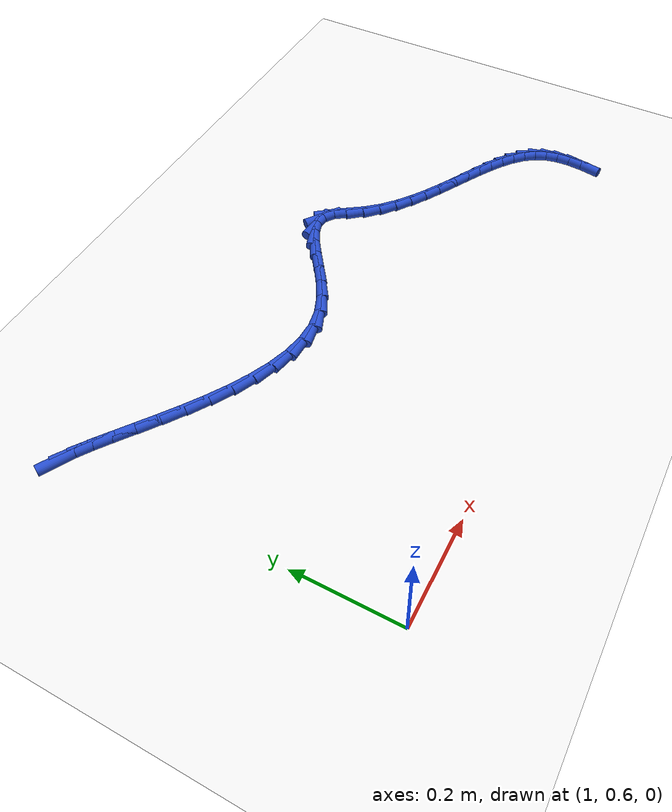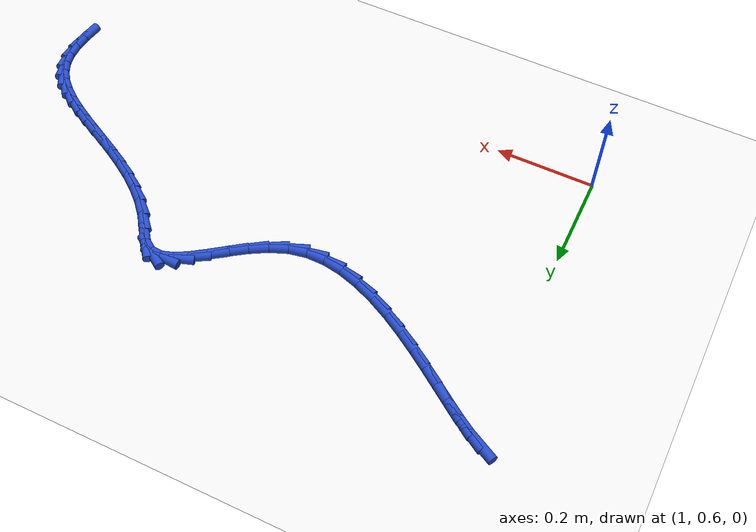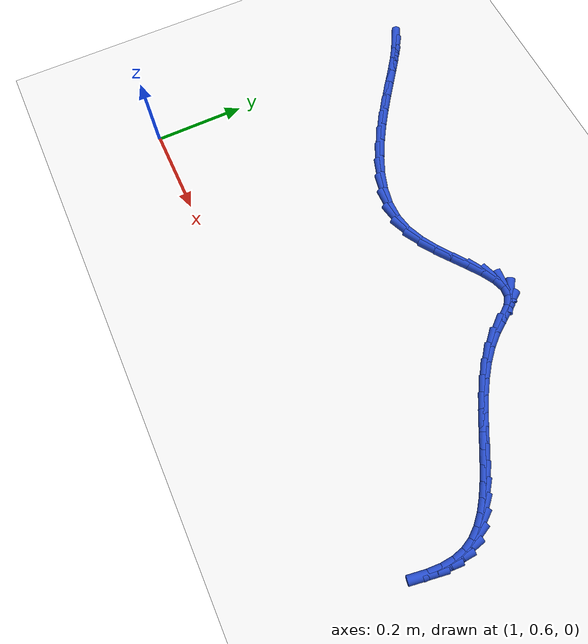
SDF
<sdf version="1.6">
 <world name="default">
  <model name="ground_plane">
   <static>1</static>
   <link name="link">
    <collision name="collision">
     <geometry><plane><normal>0 0 1</normal><size>100 100</size></plane></geometry>
     <surface><friction><ode><mu>100</mu><mu2>50</mu2></ode></friction></surface>
    </collision>
    <visual name="visual">
     <cast_shadows>0</cast_shadows>
     <geometry><plane><normal>0 0 1</normal><size>100 100</size></plane></geometry>
     <material>
      <script><uri>file://media/materials/scripts/gazebo.material</uri><name>Gazebo/WhiteGlow</name></script>
     </material>
    </visual>
   </link>
  </model>
  <model name="line">
   <link name="link_60">
    <pose>0.9881813290093746 1.2246917080598054 0.01 0 1.57 -0.501588560847529</pose>
    <collision name="collision">
     <geometry><cylinder><radius>0.01</radius><length>0.08</length></cylinder></geometry>
    </collision>
    <visual name="visual">
     <material>
      <script><name>Gazebo/Blue</name><uri>file://media/materials/scripts/gazebo.material</uri></script>
     </material>
     <geometry><cylinder><radius>0.01</radius><length>0.08</length></cylinder></geometry>
    </visual>
   </link>
   <link name="link_61">
    <pose>1.0100900992992603 1.2126776626422224 0.01 0 1.57 -0.5816954419464128</pose>
    <collision name="collision">
     <geometry><cylinder><radius>0.01</radius><length>0.08</length></cylinder></geometry>
    </collision>
    <visual name="visual">
     <material>
      <script><name>Gazebo/Blue</name><uri>file://media/materials/scripts/gazebo.material</uri></script>
     </material>
     <geometry><cylinder><radius>0.01</radius><length>0.08</length></cylinder></geometry>
    </visual>
   </link>
   <link name="link_62">
    <pose>1.0353483571992719 1.1960679749845928 0.01 0 1.57 -0.6208011964271664</pose>
    <collision name="collision">
     <geometry><cylinder><radius>0.01</radius><length>0.08</length></cylinder></geometry>
    </collision>
    <visual name="visual">
     <material>
      <script><name>Gazebo/Blue</name><uri>file://media/materials/scripts/gazebo.material</uri></script>
     </material>
     <geometry><cylinder><radius>0.01</radius><length>0.08</length></cylinder></geometry>
    </visual>
   </link>
   <link name="link_63">
    <pose>1.063585264525669 1.1758752193279505 0.01 0 1.57 -0.6357735603474983</pose>
    <collision name="collision">
     <geometry><cylinder><radius>0.01</radius><length>0.08</length></cylinder></geometry>
    </collision>
    <visual name="visual">
     <material>
      <script><name>Gazebo/Blue</name><uri>file://media/materials/scripts/gazebo.material</uri></script>
     </material>
     <geometry><cylinder><radius>0.01</radius><length>0.08</length></cylinder></geometry>
    </visual>
   </link>
   <link name="link_64">
    <pose>1.0944299830947086 1.1531119699133285 0.01 0 1.57 -0.6339519979710913</pose>
    <collision name="collision">
     <geometry><cylinder><radius>0.01</radius><length>0.08</length></cylinder></geometry>
    </collision>
    <visual name="visual">
     <material>
      <script><name>Gazebo/Blue</name><uri>file://media/materials/scripts/gazebo.material</uri></script>
     </material>
     <geometry><cylinder><radius>0.01</radius><length>0.08</length></cylinder></geometry>
    </visual>
   </link>
   <link name="link_65">
    <pose>1.1275116747226495 1.1287908009817615 0.01 0 1.57 -0.6184240336682811</pose>
    <collision name="collision">
     <geometry><cylinder><radius>0.01</radius><length>0.08</length></cylinder></geometry>
    </collision>
    <visual name="visual">
     <material>
      <script><name>Gazebo/Blue</name><uri>file://media/materials/scripts/gazebo.material</uri></script>
     </material>
     <geometry><cylinder><radius>0.01</radius><length>0.08</length></cylinder></geometry>
    </visual>
   </link>
   <link name="link_66">
    <pose>1.1624595012257506 1.1039242867742827 0.01 0 1.57 -0.5899732162965794</pose>
    <collision name="collision">
     <geometry><cylinder><radius>0.01</radius><length>0.08</length></cylinder></geometry>
    </collision>
    <visual name="visual">
     <material>
      <script><name>Gazebo/Blue</name><uri>file://media/materials/scripts/gazebo.material</uri></script>
     </material>
     <geometry><cylinder><radius>0.01</radius><length>0.08</length></cylinder></geometry>
    </visual>
   </link>
   <link name="link_67">
    <pose>1.198902624420269 1.0795250015319262 0.01 0 1.57 -0.5478032008119791</pose>
    <collision name="collision">
     <geometry><cylinder><radius>0.01</radius><length>0.08</length></cylinder></geometry>
    </collision>
    <visual name="visual">
     <material>
      <script><name>Gazebo/Blue</name><uri>file://media/materials/scripts/gazebo.material</uri></script>
     </material>
     <geometry><cylinder><radius>0.01</radius><length>0.08</length></cylinder></geometry>
    </visual>
   </link>
   <link name="link_68">
    <pose>1.236470206122464 1.0566055194957253 0.01 0 1.57 -0.48973646514505537</pose>
    <collision name="collision">
     <geometry><cylinder><radius>0.01</radius><length>0.08</length></cylinder></geometry>
    </collision>
    <visual name="visual">
     <material>
      <script><name>Gazebo/Blue</name><uri>file://media/materials/scripts/gazebo.material</uri></script>
     </material>
     <geometry><cylinder><radius>0.01</radius><length>0.08</length></cylinder></geometry>
    </visual>
   </link>
   <link name="link_69">
    <pose>1.2747914081485934 1.0361784149067137 0.01 0 1.57 -0.4121753347457541</pose>
    <collision name="collision">
     <geometry><cylinder><radius>0.01</radius><length>0.08</length></cylinder></geometry>
    </collision>
    <visual name="visual">
     <material>
      <script><name>Gazebo/Blue</name><uri>file://media/materials/scripts/gazebo.material</uri></script>
     </material>
     <geometry><cylinder><radius>0.01</radius><length>0.08</length></cylinder></geometry>
    </visual>
   </link>
   <link name="link_70">
    <pose>1.3134953923149153 1.0192562620059256 0.01 0 1.57 -0.3100667684347979</pose>
    <collision name="collision">
     <geometry><cylinder><radius>0.01</radius><length>0.08</length></cylinder></geometry>
    </collision>
    <visual name="visual">
     <material>
      <script><name>Gazebo/Blue</name><uri>file://media/materials/scripts/gazebo.material</uri></script>
     </material>
     <geometry><cylinder><radius>0.01</radius><length>0.08</length></cylinder></geometry>
    </visual>
   </link>
   <link name="link_71">
    <pose>1.352211320437688 1.0068516350343941 0.01 0 1.57 -0.17734184065778916</pose>
    <collision name="collision">
     <geometry><cylinder><radius>0.01</radius><length>0.08</length></cylinder></geometry>
    </collision>
    <visual name="visual">
     <material>
      <script><name>Gazebo/Blue</name><uri>file://media/materials/scripts/gazebo.material</uri></script>
     </material>
     <geometry><cylinder><radius>0.01</radius><length>0.08</length></cylinder></geometry>
    </visual>
   </link>
   <link name="link_72">
    <pose>1.3905683543331704 0.9999771082331536 0.01 0 1.57 -0.008819228939796616</pose>
    <collision name="collision">
     <geometry><cylinder><radius>0.01</radius><length>0.08</length></cylinder></geometry>
    </collision>
    <visual name="visual">
     <material>
      <script><name>Gazebo/Blue</name><uri>file://media/materials/scripts/gazebo.material</uri></script>
     </material>
     <geometry><cylinder><radius>0.01</radius><length>0.08</length></cylinder></geometry>
    </visual>
   </link>
   <link name="link_73">
    <pose>1.4281956558176199 0.9996452558432374 0.01 0 1.57 0.19493076184710992</pose>
    <collision name="collision">
     <geometry><cylinder><radius>0.01</radius><length>0.08</length></cylinder></geometry>
    </collision>
    <visual name="visual">
     <material>
      <script><name>Gazebo/Blue</name><uri>file://media/materials/scripts/gazebo.material</uri></script>
     </material>
     <geometry><cylinder><radius>0.01</radius><length>0.08</length></cylinder></geometry>
    </visual>
   </link>
   <link name="link_74">
    <pose>1.464723219996872 1.0068571802349615 0.01 0 1.57 0.39399973062562726</pose>
    <collision name="collision">
     <geometry><cylinder><radius>0.01</radius><length>0.08</length></cylinder></geometry>
    </collision>
    <visual name="visual">
     <material>
      <script><name>Gazebo/Blue</name><uri>file://media/materials/scripts/gazebo.material</uri></script>
     </material>
     <geometry><cylinder><radius>0.01</radius><length>0.08</length></cylinder></geometry>
    </visual>
   </link>
   <link name="link_75">
    <pose>1.4998643778442444 1.0214667015796945 0.01 0 1.57 0.5311616090390087</pose>
    <collision name="collision">
     <geometry><cylinder><radius>0.01</radius><length>0.08</length></cylinder></geometry>
    </collision>
    <visual name="visual">
     <material>
      <script><name>Gazebo/Blue</name><uri>file://media/materials/scripts/gazebo.material</uri></script>
     </material>
     <geometry><cylinder><radius>0.01</radius><length>0.08</length></cylinder></geometry>
    </visual>
   </link>
   <link name="link_76">
    <pose>1.533485664486304 1.0412184834138682 0.01 0 1.57 0.6112109564420343</pose>
    <collision name="collision">
     <geometry><cylinder><radius>0.01</radius><length>0.08</length></cylinder></geometry>
    </collision>
    <visual name="visual">
     <material>
      <script><name>Gazebo/Blue</name><uri>file://media/materials/scripts/gazebo.material</uri></script>
     </material>
     <geometry><cylinder><radius>0.01</radius><length>0.08</length></cylinder></geometry>
    </visual>
   </link>
   <link name="link_77">
    <pose>1.565470067665578 1.0636306866408451 0.01 0 1.57 0.6417608346960191</pose>
    <collision name="collision">
     <geometry><cylinder><radius>0.01</radius><length>0.08</length></cylinder></geometry>
    </collision>
    <visual name="visual">
     <material>
      <script><name>Gazebo/Blue</name><uri>file://media/materials/scripts/gazebo.material</uri></script>
     </material>
     <geometry><cylinder><radius>0.01</radius><length>0.08</length></cylinder></geometry>
    </visual>
   </link>
   <link name="link_78">
    <pose>1.59570057512459 1.0862214721639876 0.01 0 1.57 0.6209652724514145</pose>
    <collision name="collision">
     <geometry><cylinder><radius>0.01</radius><length>0.08</length></cylinder></geometry>
    </collision>
    <visual name="visual">
     <material>
      <script><name>Gazebo/Blue</name><uri>file://media/materials/scripts/gazebo.material</uri></script>
     </material>
     <geometry><cylinder><radius>0.01</radius><length>0.08</length></cylinder></geometry>
    </visual>
   </link>
   <link name="link_79">
    <pose>1.6240601746058658 1.1065090008866583 0.01 0 1.57 0.5314332965738418</pose>
    <collision name="collision">
     <geometry><cylinder><radius>0.01</radius><length>0.08</length></cylinder></geometry>
    </collision>
    <visual name="visual">
     <material>
      <script><name>Gazebo/Blue</name><uri>file://media/materials/scripts/gazebo.material</uri></script>
     </material>
     <geometry><cylinder><radius>0.01</radius><length>0.08</length></cylinder></geometry>
    </visual>
   </link>
   <link name="link_80">
    <pose>1.6504318538519311 1.12201143371222 0.01 0 1.57 0.32717707898909243</pose>
    <collision name="collision">
     <geometry><cylinder><radius>0.01</radius><length>0.08</length></cylinder></geometry>
    </collision>
    <visual name="visual">
     <material>
      <script><name>Gazebo/Blue</name><uri>file://media/materials/scripts/gazebo.material</uri></script>
     </material>
     <geometry><cylinder><radius>0.01</radius><length>0.08</length></cylinder></geometry>
    </visual>
   </link>
   <link name="link_81">
    <pose>1.6746986006053104 1.1302469315440344 0.01 0 1.57 -0.06853797103877704</pose>
    <collision name="collision">
     <geometry><cylinder><radius>0.01</radius><length>0.08</length></cylinder></geometry>
    </collision>
    <visual name="visual">
     <material>
      <script><name>Gazebo/Blue</name><uri>file://media/materials/scripts/gazebo.material</uri></script>
     </material>
     <geometry><cylinder><radius>0.01</radius><length>0.08</length></cylinder></geometry>
    </visual>
   </link>
   <link name="link_82">
    <pose>1.6967434026085295 1.128733655285465 0.01 0 1.57 -0.6069156937477816</pose>
    <collision name="collision">
     <geometry><cylinder><radius>0.01</radius><length>0.08</length></cylinder></geometry>
    </collision>
    <visual name="visual">
     <material>
      <script><name>Gazebo/Blue</name><uri>file://media/materials/scripts/gazebo.material</uri></script>
     </material>
     <geometry><cylinder><radius>0.01</radius><length>0.08</length></cylinder></geometry>
    </visual>
   </link>
   <link name="link_83">
    <pose>1.7164635441013658 1.1150412161861176 0.01 0 1.57 -0.930733746735525</pose>
    <collision name="collision">
     <geometry><cylinder><radius>0.01</radius><length>0.08</length></cylinder></geometry>
    </collision>
    <visual name="visual">
     <material>
      <script><name>Gazebo/Blue</name><uri>file://media/materials/scripts/gazebo.material</uri></script>
     </material>
     <geometry><cylinder><radius>0.01</radius><length>0.08</length></cylinder></geometry>
    </visual>
   </link>
   <link name="link_84">
    <pose>1.7347840932848881 1.0904380224623764 0.01 0 1.57 -0.9637311488147202</pose>
    <collision name="collision">
     <geometry><cylinder><radius>0.01</radius><length>0.08</length></cylinder></geometry>
    </collision>
    <visual name="visual">
     <material>
      <script><name>Gazebo/Blue</name><uri>file://media/materials/scripts/gazebo.material</uri></script>
     </material>
     <geometry><cylinder><radius>0.01</radius><length>0.08</length></cylinder></geometry>
    </visual>
   </link>
   <link name="link_85">
    <pose>1.7543266959318577 1.0623013300941773 0.01 0 1.57 -0.8526741885224159</pose>
    <collision name="collision">
     <geometry><cylinder><radius>0.01</radius><length>0.08</length></cylinder></geometry>
    </collision>
    <visual name="visual">
     <material>
      <script><name>Gazebo/Blue</name><uri>file://media/materials/scripts/gazebo.material</uri></script>
     </material>
     <geometry><cylinder><radius>0.01</radius><length>0.08</length></cylinder></geometry>
    </visual>
   </link>
   <link name="link_86">
    <pose>1.776974614704461 1.0363809936137116 0.01 0 1.57 -0.7412264865001694</pose>
    <collision name="collision">
     <geometry><cylinder><radius>0.01</radius><length>0.08</length></cylinder></geometry>
    </collision>
    <visual name="visual">
     <material>
      <script><name>Gazebo/Blue</name><uri>file://media/materials/scripts/gazebo.material</uri></script>
     </material>
     <geometry><cylinder><radius>0.01</radius><length>0.08</length></cylinder></geometry>
    </visual>
   </link>
   <link name="link_87">
    <pose>1.8024302847079203 1.013080372527894 0.01 0 1.57 -0.6513944283923118</pose>
    <collision name="collision">
     <geometry><cylinder><radius>0.01</radius><length>0.08</length></cylinder></geometry>
    </collision>
    <visual name="visual">
     <material>
      <script><name>Gazebo/Blue</name><uri>file://media/materials/scripts/gazebo.material</uri></script>
     </material>
     <geometry><cylinder><radius>0.01</radius><length>0.08</length></cylinder></geometry>
    </visual>
   </link>
   <link name="link_88">
    <pose>1.8300713681944907 0.9920066164657952 0.01 0 1.57 -0.582537644852597</pose>
    <collision name="collision">
     <geometry><cylinder><radius>0.01</radius><length>0.08</length></cylinder></geometry>
    </collision>
    <visual name="visual">
     <material>
      <script><name>Gazebo/Blue</name><uri>file://media/materials/scripts/gazebo.material</uri></script>
     </material>
     <geometry><cylinder><radius>0.01</radius><length>0.08</length></cylinder></geometry>
    </visual>
   </link>
   <link name="link_89">
    <pose>1.8592755274164272 0.9727668750564841 0.01 0 1.57 -0.5333561038491399</pose>
    <collision name="collision">
     <geometry><cylinder><radius>0.01</radius><length>0.08</length></cylinder></geometry>
    </collision>
    <visual name="visual">
     <material>
      <script><name>Gazebo/Blue</name><uri>file://media/materials/scripts/gazebo.material</uri></script>
     </material>
     <geometry><cylinder><radius>0.01</radius><length>0.08</length></cylinder></geometry>
    </visual>
   </link>
   <link name="link_90">
    <pose>1.889420424625985 0.954968297929031 0.01 0 1.57 -0.5027285222679674</pose>
    <collision name="collision">
     <geometry><cylinder><radius>0.01</radius><length>0.08</length></cylinder></geometry>
    </collision>
    <visual name="visual">
     <material>
      <script><name>Gazebo/Blue</name><uri>file://media/materials/scripts/gazebo.material</uri></script>
     </material>
     <geometry><cylinder><radius>0.01</radius><length>0.08</length></cylinder></geometry>
    </visual>
   </link>
   <link name="link_91">
    <pose>1.9198837220754186 0.9382180347125055 0.01 0 1.57 -0.4902104724584977</pose>
    <collision name="collision">
     <geometry><cylinder><radius>0.01</radius><length>0.08</length></cylinder></geometry>
    </collision>
    <visual name="visual">
     <material>
      <script><name>Gazebo/Blue</name><uri>file://media/materials/scripts/gazebo.material</uri></script>
     </material>
     <geometry><cylinder><radius>0.01</radius><length>0.08</length></cylinder></geometry>
    </visual>
   </link>
   <link name="link_92">
    <pose>1.950043082016984 0.9221232350359778 0.01 0 1.57 -0.49635924894472677</pose>
    <collision name="collision">
     <geometry><cylinder><radius>0.01</radius><length>0.08</length></cylinder></geometry>
    </collision>
    <visual name="visual">
     <material>
      <script><name>Gazebo/Blue</name><uri>file://media/materials/scripts/gazebo.material</uri></script>
     </material>
     <geometry><cylinder><radius>0.01</radius><length>0.08</length></cylinder></geometry>
    </visual>
   </link>
   <link name="link_93">
    <pose>1.9792761667029344 0.9062910485285173 0.01 0 1.57 -0.523023890843584</pose>
    <collision name="collision">
     <geometry><cylinder><radius>0.01</radius><length>0.08</length></cylinder></geometry>
    </collision>
    <visual name="visual">
     <material>
      <script><name>Gazebo/Blue</name><uri>file://media/materials/scripts/gazebo.material</uri></script>
     </material>
     <geometry><cylinder><radius>0.01</radius><length>0.08</length></cylinder></geometry>
    </visual>
   </link>
   <link name="link_94">
    <pose>2.0069606383855265 0.8903286248191943 0.01 0 1.57 -0.5736625649238704</pose>
    <collision name="collision">
     <geometry><cylinder><radius>0.01</radius><length>0.08</length></cylinder></geometry>
    </collision>
    <visual name="visual">
     <material>
      <script><name>Gazebo/Blue</name><uri>file://media/materials/scripts/gazebo.material</uri></script>
     </material>
     <geometry><cylinder><radius>0.01</radius><length>0.08</length></cylinder></geometry>
    </visual>
   </link>
   <link name="link_95">
    <pose>2.0324741593170144 0.8738431135370783 0.01 0 1.57 -0.6536003342385287</pose>
    <collision name="collision">
     <geometry><cylinder><radius>0.01</radius><length>0.08</length></cylinder></geometry>
    </collision>
    <visual name="visual">
     <material>
      <script><name>Gazebo/Blue</name><uri>file://media/materials/scripts/gazebo.material</uri></script>
     </material>
     <geometry><cylinder><radius>0.01</radius><length>0.08</length></cylinder></geometry>
    </visual>
   </link>
   <link name="link_96">
    <pose>2.055194391749653 0.8564416643112392 0.01 0 1.57 -0.7697642645951073</pose>
    <collision name="collision">
     <geometry><cylinder><radius>0.01</radius><length>0.08</length></cylinder></geometry>
    </collision>
    <visual name="visual">
     <material>
      <script><name>Gazebo/Blue</name><uri>file://media/materials/scripts/gazebo.material</uri></script>
     </material>
     <geometry><cylinder><radius>0.01</radius><length>0.08</length></cylinder></geometry>
    </visual>
   </link>
   <link name="link_97">
    <pose>2.074498997935697 0.8377314267707472 0.01 0 1.57 -0.9286217242346476</pose>
    <collision name="collision">
     <geometry><cylinder><radius>0.01</radius><length>0.08</length></cylinder></geometry>
    </collision>
    <visual name="visual">
     <material>
      <script><name>Gazebo/Blue</name><uri>file://media/materials/scripts/gazebo.material</uri></script>
     </material>
     <geometry><cylinder><radius>0.01</radius><length>0.08</length></cylinder></geometry>
    </visual>
   </link>
   <link name="link_98">
    <pose>2.089765640127403 0.8173195505446718 0.01 0 1.57 -1.1303863685918545</pose>
    <collision name="collision">
     <geometry><cylinder><radius>0.01</radius><length>0.08</length></cylinder></geometry>
    </collision>
    <visual name="visual">
     <material>
      <script><name>Gazebo/Blue</name><uri>file://media/materials/scripts/gazebo.material</uri></script>
     </material>
     <geometry><cylinder><radius>0.01</radius><length>0.08</length></cylinder></geometry>
    </visual>
   </link>
   <link name="link_99">
    <pose>2.1003723790799893 0.7948133833479308 0.01 0 1.57 -1.347311413117141</pose>
    <collision name="collision">
     <geometry><cylinder><radius>0.01</radius><length>0.08</length></cylinder></geometry>
    </collision>
    <visual name="visual">
     <material>
      <script><name>Gazebo/Blue</name><uri>file://media/materials/scripts/gazebo.material</uri></script>
     </material>
     <geometry><cylinder><radius>0.01</radius><length>0.08</length></cylinder></geometry>
    </visual>
   </link>
   <link name="link_100">
    <pose>2.10601675630783 0.7699790787832728 0.01 0 1.57 -1.5235602655399807</pose>
    <collision name="collision">
     <geometry><cylinder><radius>0.01</radius><length>0.08</length></cylinder></geometry>
    </collision>
    <visual name="visual">
     <material>
      <script><name>Gazebo/Blue</name><uri>file://media/materials/scripts/gazebo.material</uri></script>
     </material>
     <geometry><cylinder><radius>0.01</radius><length>0.08</length></cylinder></geometry>
    </visual>
   </link>
   <link name="link_101">
    <pose>2.1072907944711896 0.743027414639565 0.01 0 1.57 1.4893631907564713</pose>
    <collision name="collision">
     <geometry><cylinder><radius>0.01</radius><length>0.08</length></cylinder></geometry>
    </collision>
    <visual name="visual">
     <material>
      <script><name>Gazebo/Blue</name><uri>file://media/materials/scripts/gazebo.material</uri></script>
     </material>
     <geometry><cylinder><radius>0.01</radius><length>0.08</length></cylinder></geometry>
    </visual>
   </link>
   <link name="link_102">
    <pose>2.1049418710349226 0.7142463916900493 0.01 0 1.57 1.400172864104896</pose>
    <collision name="collision">
     <geometry><cylinder><radius>0.01</radius><length>0.08</length></cylinder></geometry>
    </collision>
    <visual name="visual">
     <material>
      <script><name>Gazebo/Blue</name><uri>file://media/materials/scripts/gazebo.material</uri></script>
     </material>
     <geometry><cylinder><radius>0.01</radius><length>0.08</length></cylinder></geometry>
    </visual>
   </link>
  </model>
 </world>
</sdf>
